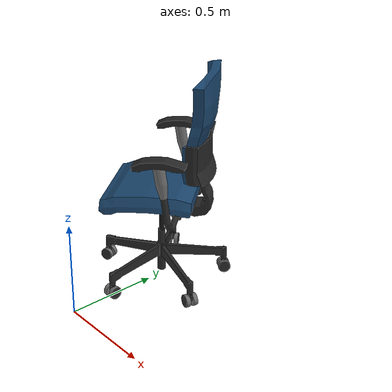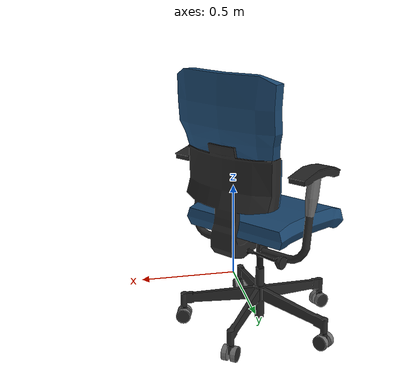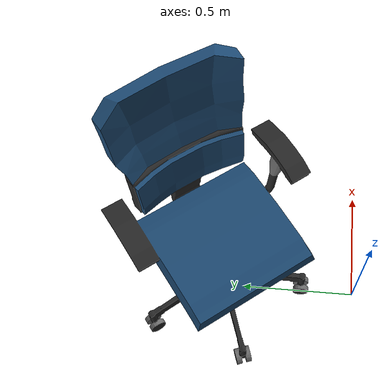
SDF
<?xml version="1.0" ?>
<sdf version="1.5">
  <model name="chair">
  	<static>1</static>
    <link name="chair_base">
      <inertial>
        <mass>25.0</mass>
      </inertial>
      <collision name="collision">
        <pose>0 0.575 0 0 0 0.707</pose>
        <geometry>
          <box>
            <size>0.6 0.6 1.5</size>
          </box>
        </geometry>
      </collision>
      <visual name="visual">
        <cast_shadows>0</cast_shadows>
        <geometry>
          <mesh>
            <uri>model://chair/meshes/chair.dae</uri>
          </mesh>
        </geometry>
      </visual>
    </link>
  </model>
</sdf>
